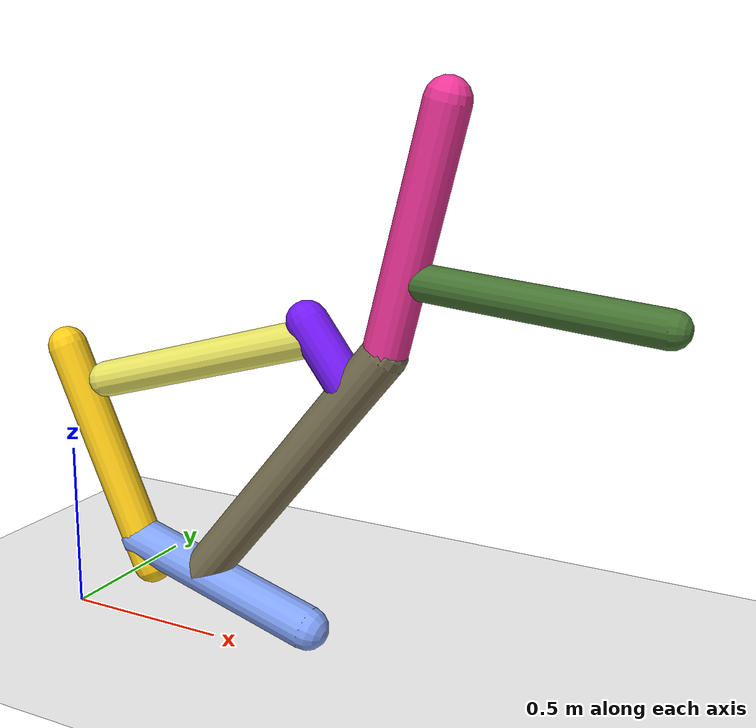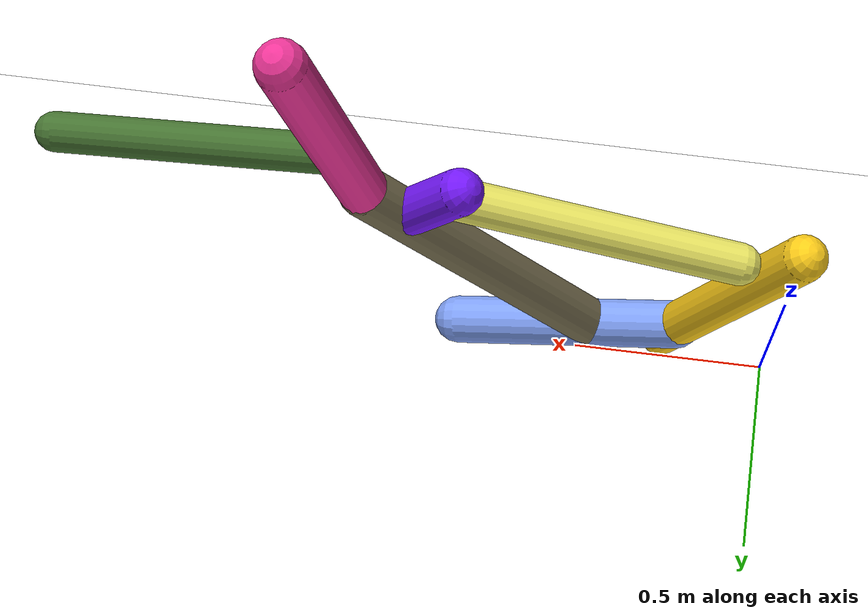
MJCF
<mujoco model="morphology">
  <option timestep="0.01"/>
  <default>
    <default class="/"/>
    <default class="0/"/>
    <default class="0/1/"/>
    <default class="0/1/2/"/>
    <default class="0/1/2/3/"/>
    <default class="0/1/2/3/4/"/>
    <default class="0/1/2/5/"/>
    <default class="0/1/2/5/6/"/>
  </default>
  <asset>
    <texture name="texplane" type="2d" builtin="checker" rgb1="0.10000000000000001 0.20000000000000001 0.29999999999999999" rgb2="0.20000000000000001 0.29999999999999999 0.40000000000000002" width="300" height="300"/>
    <material name="MatPlane" class="/" texture="texplane" texrepeat="20 20" specular="1" shininess="1" reflectance="0.5"/>
  </asset>
  <worldbody>
    <light name="//unnamed_light_0" class="/" directional="true" pos="0 0 1.5" dir="0 0 -1.3" cutoff="100" exponent="1" diffuse="1 1 1" specular="0.10000000000000001 0.10000000000000001 0.10000000000000001"/>
    <geom name="ground" class="/" type="plane" size="15 15 0.5" material="MatPlane" rgba="1 1 1 1"/>
    <site name="body" class="/" size="9.9999999999999995e-07 9.9999999999999995e-07 9.9999999999999995e-07" pos="0 0 0.8212209105491638"/>
    <body pos="0 0 0.8212209105491638" name="0/">
      <joint name="0/rootx/" class="/" type="slide" axis="1 0 0" limited="false" stiffness="0" armature="0" damping="0"/>
      <joint name="0/rootz/" class="/" type="slide" axis="0 0 1" limited="false" stiffness="0" armature="0" damping="0"/>
      <joint name="0/rooty/" class="/" type="hinge" axis="0 1 0" limited="false" stiffness="0" armature="0" damping="0"/>
      <geom name="0/geom" class="0/" type="capsule" contype="1" conaffinity="1" condim="3" size="0.058228268305792377" rgba="0.99256329232360774 0.80026862139939137 0.092109066804595963 1" friction="0.59999999999999998 0.10000000000000001 0.10000000000000001" fromto="0 0 0 0.28506141953316844 0 -0.63612616351054563"/>
      <site name="0/end0" class="0/" size="0.0050000000000000001" pos="0.28506141953316844 0 -0.63612616351054563"/>
      <site name="0/attach1" class="0/" size="9.9999999999999995e-07 9.9999999999999995e-07 9.9999999999999995e-07" pos="0.25110527704992969 0 -0.56035164908886759"/>
      <body pos="0.25110527704992969 0 -0.56035164908886759" name="0/1/">
        <joint name="0/1/joint/" class="0/" type="hinge" axis="0 1 0" limited="true" range="-48.703516805434361 48.703516805434361"/>
        <geom name="0/1/geom" class="0/1/" type="capsule" contype="1" conaffinity="1" condim="3" size="0.062640778569621303" rgba="0.50272332924878149 0.63146451913117085 0.96574404610553544 1" friction="0.59999999999999998 0.10000000000000001 0.10000000000000001" fromto="0 0 0 0.56871572312688423 0 -0.16086927287347597"/>
        <site name="0/1/end1" class="0/1/" size="0.0050000000000000001" pos="0.56871572312688423 0 -0.16086927287347597"/>
        <site name="0/1/attach2" class="0/1/" size="9.9999999999999995e-07 9.9999999999999995e-07 9.9999999999999995e-07" pos="0.22063165397520995 0 -0.06240877877038347"/>
        <body pos="0.22063165397520995 0 -0.06240877877038347" name="0/1/2/">
          <joint name="0/1/2/joint/" class="0/1/" type="hinge" axis="0 1 0" limited="true" range="-32.260462362748072 32.260462362748072"/>
          <geom name="0/1/2/geom" class="0/1/2/" type="capsule" contype="1" conaffinity="1" condim="3" size="0.062638458295989408" rgba="0.4784344957879002 0.44477085839255714 0.32077911702113071 1" friction="0.59999999999999998 0.10000000000000001 0.10000000000000001" fromto="0 0 0 0.5790909168396805 0 0.71417047325714234"/>
          <site name="0/1/2/end2" class="0/1/2/" size="0.0050000000000000001" pos="0.5790909168396805 0 0.71417047325714234"/>
          <site name="0/1/2/attach3" class="0/1/2/" size="9.9999999999999995e-07 9.9999999999999995e-07 9.9999999999999995e-07" pos="0.48723230747994617 0 0.60088479632543812"/>
          <body pos="0.48723230747994617 0 0.60088479632543812" name="0/1/2/3/">
            <geom name="0/1/2/3/geom" class="0/1/2/3/" type="capsule" contype="1" conaffinity="1" condim="3" size="0.057537663698890712" rgba="0.45577424336018868 0.09326920297861907 0.97685452427471953 1" friction="0.59999999999999998 0.10000000000000001 0.10000000000000001" fromto="0 0 0 -0.1348170567730067 0 0.1787808972513677"/>
            <site name="0/1/2/3/end3" class="0/1/2/3/" size="0.0050000000000000001" pos="-0.1348170567730067 0 0.1787808972513677"/>
            <site name="0/1/2/3/attach4" class="0/1/2/3/" size="9.9999999999999995e-07 9.9999999999999995e-07 9.9999999999999995e-07" pos="-0.10712480271510513 0 0.14205819950162912"/>
            <body pos="-0.10712480271510513 0 0.14205819950162912" name="0/1/2/3/4/">
              <joint name="0/1/2/3/4/joint/" class="0/1/2/3/" type="hinge" axis="0 1 0" limited="true" range="-41.66901333614171 41.66901333614171"/>
              <geom name="0/1/2/3/4/geom" class="0/1/2/3/4/" type="capsule" contype="1" conaffinity="1" condim="3" size="0.052463216103855681" rgba="0.92506359380149139 0.90792845108052378 0.38985993230255855 1" friction="0.59999999999999998 0.10000000000000001 0.10000000000000001" fromto="0 0 0 -0.70891294128898608 0 -0.20426135769798615"/>
              <site name="0/1/2/3/4/end4" class="0/1/2/3/4/" size="0.0050000000000000001" pos="-0.70891294128898608 0 -0.20426135769798615"/>
            </body>
          </body>
          <site name="0/1/2/attach5" class="0/1/2/" size="9.9999999999999995e-07 9.9999999999999995e-07 9.9999999999999995e-07" pos="0.57898641068933343 0 0.7140415898561403"/>
          <body pos="0.57898641068933343 0 0.7140415898561403" name="0/1/2/5/">
            <joint name="0/1/2/5/joint/" class="0/1/2/" type="hinge" axis="0 1 0" limited="true" range="-36.558841214268341 36.558841214268341"/>
            <geom name="0/1/2/5/geom" class="0/1/2/5/" type="capsule" contype="1" conaffinity="1" condim="3" size="0.06043016942179838" rgba="0.93243016955377112 0.20448845908430302 0.59586752973928336 1" friction="0.59999999999999998 0.10000000000000001 0.10000000000000001" fromto="0 0 0 0.15749757327210534 0 0.63452925385146441"/>
            <site name="0/1/2/5/end5" class="0/1/2/5/" size="0.0050000000000000001" pos="0.15749757327210534 0 0.63452925385146441"/>
            <site name="0/1/2/5/attach6" class="0/1/2/5/" size="9.9999999999999995e-07 9.9999999999999995e-07 9.9999999999999995e-07" pos="0.049980298567226203 0 0.20136158861536166"/>
            <body pos="0.049980298567226203 0 0.20136158861536166" name="0/1/2/5/6/">
              <joint name="0/1/2/5/6/joint/" class="0/1/2/5/" type="hinge" axis="0 1 0" limited="true" range="-38.912534816123738 38.912534816123738"/>
              <geom name="0/1/2/5/6/geom" class="0/1/2/5/6/" type="capsule" contype="1" conaffinity="1" condim="3" size="0.047595960476528774" rgba="0.27401429888283657 0.45226766783902739 0.19489342910852026 1" friction="0.59999999999999998 0.10000000000000001 0.10000000000000001" fromto="0 0 0 0.66527021940019382 0 -0.05915319151026488"/>
              <site name="0/1/2/5/6/end6" class="0/1/2/5/6/" size="0.0050000000000000001" pos="0.66527021940019382 0 -0.05915319151026488"/>
            </body>
          </body>
        </body>
      </body>
      <camera name="0/side" class="0/" mode="trackcom" pos="0.40000000000000002 -4 0.20000000000000001" quat="0.70699999999999996 0.70699999999999996 0 0"/>
    </body>
  </worldbody>
  <actuator>
    <motor name="0/1/motor" class="0/1/" ctrllimited="true" ctrlrange="-1 1" gear="66" joint="0/1/joint/"/>
    <motor name="0/1/2/motor" class="0/1/2/" ctrllimited="true" ctrlrange="-1 1" gear="54" joint="0/1/2/joint/"/>
    <motor name="0/1/2/3/4/motor" class="0/1/2/3/4/" ctrllimited="true" ctrlrange="-1 1" gear="61" joint="0/1/2/3/4/joint/"/>
    <motor name="0/1/2/5/motor" class="0/1/2/5/" ctrllimited="true" ctrlrange="-1 1" gear="56" joint="0/1/2/5/joint/"/>
    <motor name="0/1/2/5/6/motor" class="0/1/2/5/6/" ctrllimited="true" ctrlrange="-1 1" gear="88" joint="0/1/2/5/6/joint/"/>
  </actuator>
  <sensor>
    <subtreelinvel name="velocity" body="0/"/>
  </sensor>
</mujoco>
